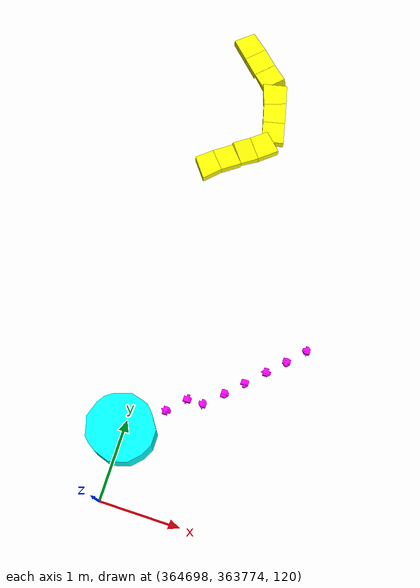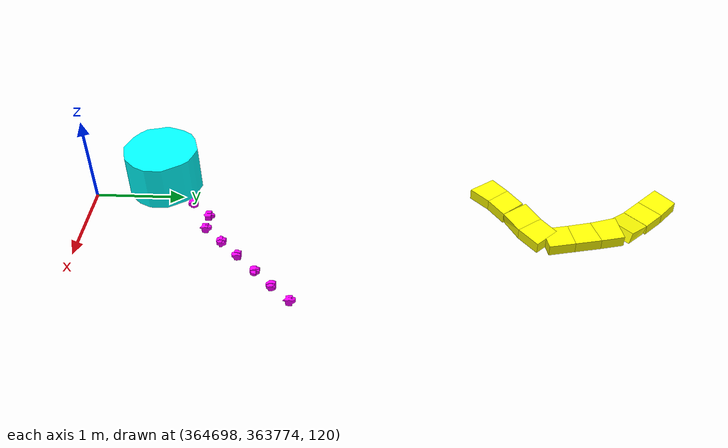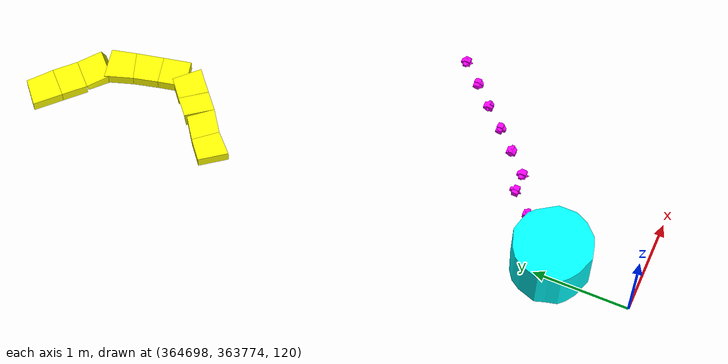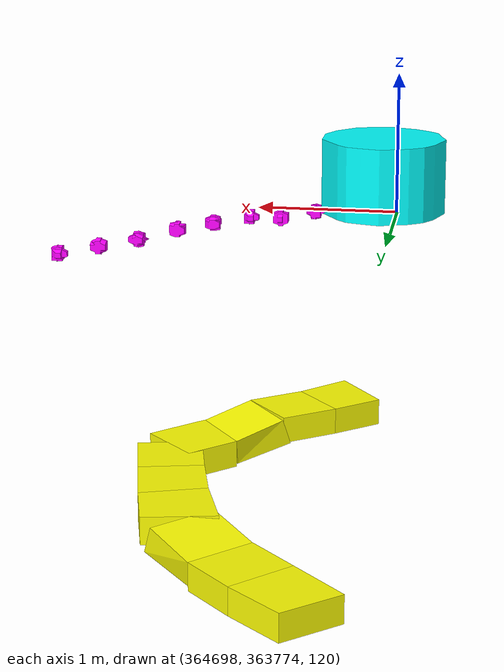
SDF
<sdf version="1.5">
 <world name="default">
  <include><uri>model://sun</uri></include>
  <model name="start_marker">
   <static>true</static>
   <pose>364698.04 363774.84 120.45 0 0 0</pose>
   <link name="link">
    <visual name="visual">
     <geometry><cylinder><radius>0.4</radius><length>0.5</length></cylinder></geometry>
     <material><ambient>0 1 1 1</ambient><diffuse>0 1 1 1</diffuse><emissive>0 1 1 1</emissive></material>
    </visual>
   </link>
  </model>
  <model name="road_segment_0">
   <static>true</static>
   <pose>364697.93999999994 363774.94000000006 120.28499999991998 0 -0.17496904510691408 2.356194490192345</pose>
   <link name="link">
    <collision name="collision">
     <geometry><box><size>0.28722813231524835 0.3 0.12</size></box></geometry>
     <surface><friction><ode><mu>0.1</mu><mu2>0.1</mu2></ode></friction></surface>
    </collision>
    <visual name="visual">
     <geometry><box><size>0.28722813231524835 0.3 0.12</size></box></geometry>
     <material><ambient>1 1 0 1</ambient><diffuse>1 1 0 1</diffuse><emissive>1 1 0 1</emissive></material>
    </visual>
   </link>
  </model>
  <model name="road_segment_15">
   <static>true</static>
   <pose>364697.94000000006 363778.45666666667 120.11 0 -0.0 0.6947382762253299</pose>
   <link name="link">
    <collision name="collision">
     <geometry><box><size>0.26034165588491964 0.3 0.12</size></box></geometry>
     <surface><friction><ode><mu>0.02</mu><mu2>0.02</mu2></ode></friction></surface>
    </collision>
    <visual name="visual">
     <geometry><box><size>0.26034165588491964 0.3 0.12</size></box></geometry>
     <material><ambient>1 1 0 1</ambient><diffuse>1 1 0 1</diffuse><emissive>1 1 0 1</emissive></material>
    </visual>
   </link>
  </model>
  <model name="road_segment_16">
   <static>true</static>
   <pose>364698.14 363778.6233333333 120.11 0 -0.0 0.6947382763684635</pose>
   <link name="link">
    <collision name="collision">
     <geometry><box><size>0.26034165584020325 0.3 0.12</size></box></geometry>
     <surface><friction><ode><mu>0.02</mu><mu2>0.02</mu2></ode></friction></surface>
    </collision>
    <visual name="visual">
     <geometry><box><size>0.26034165584020325 0.3 0.12</size></box></geometry>
     <material><ambient>1 1 0 1</ambient><diffuse>1 1 0 1</diffuse><emissive>1 1 0 1</emissive></material>
    </visual>
   </link>
  </model>
  <model name="road_segment_17">
   <static>true</static>
   <pose>364698.33999999997 363778.79 120.08416666678163 0 0.19591162356437838 0.6947382760535696</pose>
   <link name="link">
    <collision name="collision">
     <geometry><box><size>0.2654189559737308 0.3 0.12</size></box></geometry>
     <surface><friction><ode><mu>0.1</mu><mu2>0.1</mu2></ode></friction></surface>
    </collision>
    <visual name="visual">
     <geometry><box><size>0.2654189559737308 0.3 0.12</size></box></geometry>
     <material><ambient>1 1 0 1</ambient><diffuse>1 1 0 1</diffuse><emissive>1 1 0 1</emissive></material>
    </visual>
   </link>
  </model>
  <model name="road_segment_18">
   <static>true</static>
   <pose>364698.54000000004 363778.95666666667 120.0541666668049 0 0.03199829528916069 0.6947382762253299</pose>
   <link name="link">
    <collision name="collision">
     <geometry><box><size>0.2604749934953493 0.3 0.12</size></box></geometry>
     <surface><friction><ode><mu>0.1</mu><mu2>0.1</mu2></ode></friction></surface>
    </collision>
    <visual name="visual">
     <geometry><box><size>0.2604749934953493 0.3 0.12</size></box></geometry>
     <material><ambient>1 1 0 1</ambient><diffuse>1 1 0 1</diffuse><emissive>1 1 0 1</emissive></material>
    </visual>
   </link>
  </model>
  <model name="road_segment_19">
   <static>true</static>
   <pose>364698.6066666667 363779.17333333334 120.05000000002327 0 1.6941951697884164e-10 1.815774989870401</pose>
   <link name="link">
    <collision name="collision">
     <geometry><box><size>0.2748737083669814 0.3 0.12</size></box></geometry>
     <surface><friction><ode><mu>0.02</mu><mu2>0.02</mu2></ode></friction></surface>
    </collision>
    <visual name="visual">
     <geometry><box><size>0.2748737083669814 0.3 0.12</size></box></geometry>
     <material><ambient>1 1 0 1</ambient><diffuse>1 1 0 1</diffuse><emissive>1 1 0 1</emissive></material>
    </visual>
   </link>
  </model>
  <model name="road_segment_20">
   <static>true</static>
   <pose>364698.54000000004 363779.44 120.05 0 -0.0 1.8157749900244802</pose>
   <link name="link">
    <collision name="collision">
     <geometry><box><size>0.2748737084375686 0.3 0.12</size></box></geometry>
     <surface><friction><ode><mu>0.02</mu><mu2>0.02</mu2></ode></friction></surface>
    </collision>
    <visual name="visual">
     <geometry><box><size>0.2748737084375686 0.3 0.12</size></box></geometry>
     <material><ambient>1 1 0 1</ambient><diffuse>1 1 0 1</diffuse><emissive>1 1 0 1</emissive></material>
    </visual>
   </link>
  </model>
  <model name="road_segment_21">
   <static>true</static>
   <pose>364698.4733333333 363779.70666666667 120.05000000007566 0 -5.505488057087839e-10 1.815774989870401</pose>
   <link name="link">
    <collision name="collision">
     <geometry><box><size>0.2748737083669814 0.3 0.12</size></box></geometry>
     <surface><friction><ode><mu>0.02</mu><mu2>0.02</mu2></ode></friction></surface>
    </collision>
    <visual name="visual">
     <geometry><box><size>0.2748737083669814 0.3 0.12</size></box></geometry>
     <material><ambient>1 1 0 1</ambient><diffuse>1 1 0 1</diffuse><emissive>1 1 0 1</emissive></material>
    </visual>
   </link>
  </model>
  <model name="road_segment_22">
   <static>true</static>
   <pose>364698.33999999997 363779.94000000006 120.0250000002852 0 0.17496904473771055 2.356194490192345</pose>
   <link name="link">
    <collision name="collision">
     <geometry><box><size>0.28722813229650196 0.3 0.12</size></box></geometry>
     <surface><friction><ode><mu>0.2</mu><mu2>0.2</mu2></ode></friction></surface>
    </collision>
    <visual name="visual">
     <geometry><box><size>0.28722813229650196 0.3 0.12</size></box></geometry>
     <material><ambient>1 1 0 1</ambient><diffuse>1 1 0 1</diffuse><emissive>1 1 0 1</emissive></material>
    </visual>
   </link>
  </model>
  <model name="road_segment_23">
   <static>true</static>
   <pose>364698.14 363780.14 120.00000000020954 0 1.4817150944987535e-09 2.356194490337864</pose>
   <link name="link">
    <collision name="collision">
     <geometry><box><size>0.2828427124499236 0.3 0.12</size></box></geometry>
     <surface><friction><ode><mu>0.2</mu><mu2>0.2</mu2></ode></friction></surface>
    </collision>
    <visual name="visual">
     <geometry><box><size>0.2828427124499236 0.3 0.12</size></box></geometry>
     <material><ambient>1 1 0 1</ambient><diffuse>1 1 0 1</diffuse><emissive>1 1 0 1</emissive></material>
    </visual>
   </link>
  </model>
  <model name="road_segment_24">
   <static>true</static>
   <pose>364697.93999999994 363780.33999999997 120.0 0 -0.0 2.356194490192345</pose>
   <link name="link">
    <collision name="collision">
     <geometry><box><size>0.2828427124910826 0.3 0.12</size></box></geometry>
     <surface><friction><ode><mu>0.2</mu><mu2>0.2</mu2></ode></friction></surface>
    </collision>
    <visual name="visual">
     <geometry><box><size>0.2828427124910826 0.3 0.12</size></box></geometry>
     <material><ambient>1 1 0 1</ambient><diffuse>1 1 0 1</diffuse><emissive>1 1 0 1</emissive></material>
    </visual>
   </link>
  </model>
  <model name="straight_marker_0">
   <static>true</static>
   <pose>364698.04 363774.84 120.25 0 0 0</pose>
   <link name="link">
    <visual name="visual">
     <geometry><sphere><radius>0.05</radius></sphere></geometry>
     <material><ambient>1 0 1 1</ambient><diffuse>1 0 1 1</diffuse><emissive>1 0 1 1</emissive></material>
    </visual>
   </link>
  </model>
  <model name="straight_marker_1">
   <static>true</static>
   <pose>364698.24 363775.04 120.29999999982537 0 0 0</pose>
   <link name="link">
    <visual name="visual">
     <geometry><sphere><radius>0.05</radius></sphere></geometry>
     <material><ambient>1 0 1 1</ambient><diffuse>1 0 1 1</diffuse><emissive>1 0 1 1</emissive></material>
    </visual>
   </link>
  </model>
  <model name="straight_marker_2">
   <static>true</static>
   <pose>364698.44 363775.24 120.28000000007567 0 0 0</pose>
   <link name="link">
    <visual name="visual">
     <geometry><sphere><radius>0.05</radius></sphere></geometry>
     <material><ambient>1 0 1 1</ambient><diffuse>1 0 1 1</diffuse><emissive>1 0 1 1</emissive></material>
    </visual>
   </link>
  </model>
  <model name="straight_marker_3">
   <static>true</static>
   <pose>364698.64 363775.44 120.28 0 0 0</pose>
   <link name="link">
    <visual name="visual">
     <geometry><sphere><radius>0.05</radius></sphere></geometry>
     <material><ambient>1 0 1 1</ambient><diffuse>1 0 1 1</diffuse><emissive>1 0 1 1</emissive></material>
    </visual>
   </link>
  </model>
  <model name="straight_marker_4">
   <static>true</static>
   <pose>364698.84 363775.44 120.28 0 0 0</pose>
   <link name="link">
    <visual name="visual">
     <geometry><sphere><radius>0.05</radius></sphere></geometry>
     <material><ambient>1 0 1 1</ambient><diffuse>1 0 1 1</diffuse><emissive>1 0 1 1</emissive></material>
    </visual>
   </link>
  </model>
  <model name="straight_marker_5">
   <static>true</static>
   <pose>364699.04 363775.64 120.28 0 0 0</pose>
   <link name="link">
    <visual name="visual">
     <geometry><sphere><radius>0.05</radius></sphere></geometry>
     <material><ambient>1 0 1 1</ambient><diffuse>1 0 1 1</diffuse><emissive>1 0 1 1</emissive></material>
    </visual>
   </link>
  </model>
  <model name="straight_marker_6">
   <static>true</static>
   <pose>364699.24 363775.84 120.28 0 0 0</pose>
   <link name="link">
    <visual name="visual">
     <geometry><sphere><radius>0.05</radius></sphere></geometry>
     <material><ambient>1 0 1 1</ambient><diffuse>1 0 1 1</diffuse><emissive>1 0 1 1</emissive></material>
    </visual>
   </link>
  </model>
  <model name="straight_marker_7">
   <static>true</static>
   <pose>364699.44 363776.04 120.2599999998021 0 0 0</pose>
   <link name="link">
    <visual name="visual">
     <geometry><sphere><radius>0.05</radius></sphere></geometry>
     <material><ambient>1 0 1 1</ambient><diffuse>1 0 1 1</diffuse><emissive>1 0 1 1</emissive></material>
    </visual>
   </link>
  </model>
  <model name="straight_marker_8">
   <static>true</static>
   <pose>364699.64 363776.24 120.25999999999999 0 0 0</pose>
   <link name="link">
    <visual name="visual">
     <geometry><sphere><radius>0.05</radius></sphere></geometry>
     <material><ambient>1 0 1 1</ambient><diffuse>1 0 1 1</diffuse><emissive>1 0 1 1</emissive></material>
    </visual>
   </link>
  </model>
  <model name="straight_marker_9">
   <static>true</static>
   <pose>364699.84 363776.44 120.25999999999999 0 0 0</pose>
   <link name="link">
    <visual name="visual">
     <geometry><sphere><radius>0.05</radius></sphere></geometry>
     <material><ambient>1 0 1 1</ambient><diffuse>1 0 1 1</diffuse><emissive>1 0 1 1</emissive></material>
    </visual>
   </link>
  </model>
  <model name="normal_astar_segment_0">
   <static>true</static>
   <pose>364697.94 363774.84 120.33 0 -0.0 3.141592653589793</pose>
   <link name="link">
    <visual name="visual">
     <geometry><box><size>0.19999999995343387 0.15 0.06</size></box></geometry>
     <material><ambient>0 1 1 1</ambient><diffuse>0 1 1 1</diffuse><emissive>0 1 1 1</emissive></material>
    </visual>
   </link>
  </model>
  <model name="dijkstra_marker_0">
   <static>true</static>
   <pose>364698.04 363774.84 120.30000000000001 0 0 0</pose>
   <link name="link">
    <visual name="visual">
     <geometry><sphere><radius>0.08</radius></sphere></geometry>
     <material><ambient>0 0 1 1</ambient><diffuse>0 0 1 1</diffuse><emissive>0 0 1 1</emissive></material>
    </visual>
   </link>
  </model>
 </world>
</sdf>
